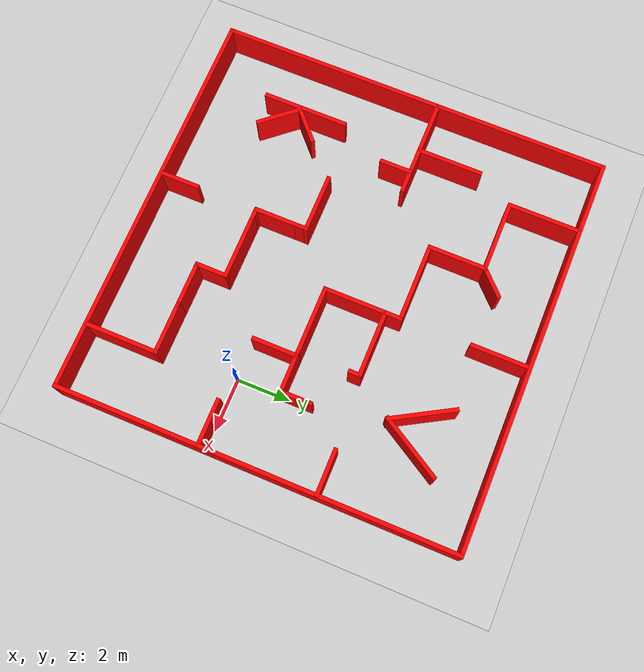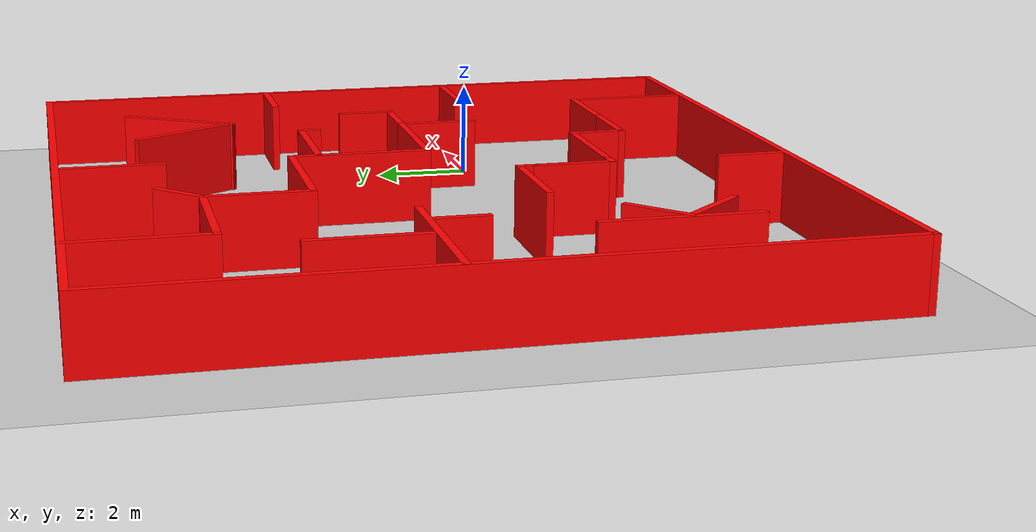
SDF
<?xml version="1.0" ?>
<sdf version="1.4">
  <world name="default">
    <include>
      <uri>model://ground_plane</uri>
    </include>
    <include>
      <uri>model://sun</uri>
    </include>
    <include>
      <uri>model://final_test_world_3</uri>
    </include>

    <!-- Only one ROS interface plugin is required per world, as any other plugin can connect a Gazebo
         topic to a ROS topic (or vise versa). -->
    <plugin name="ros_interface_plugin" filename="librotors_gazebo_ros_interface_plugin.so"/>

    <spherical_coordinates>
      <surface_model>EARTH_WGS84</surface_model>
      <latitude_deg>47.3667</latitude_deg>
      <longitude_deg>8.5500</longitude_deg>
      <elevation>500.0</elevation>
      <heading_deg>0</heading_deg>
    </spherical_coordinates>
    <physics type='ode'>
      <ode>
        <solver>
          <type>quick</type>
          <iters>1000</iters>
          <sor>1.3</sor>
        </solver>
        <constraints>
          <cfm>0</cfm>
          <erp>0.2</erp>
          <contact_max_correcting_vel>100</contact_max_correcting_vel>
          <contact_surface_layer>0.001</contact_surface_layer>
        </constraints>
      </ode>
      <max_step_size>0.01</max_step_size>
      <real_time_factor>1</real_time_factor>
      <real_time_update_rate>100</real_time_update_rate>
      <gravity>0 0 -9.8</gravity>
    </physics>
  </world>
</sdf>

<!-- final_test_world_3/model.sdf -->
<sdf version='1.6'>
  <model name='final_test_world_3'>
    <pose frame=''>-4.63034 1.94853 0 0 -0 0</pose>
    <link name='Wall_100'>
      <collision name='Wall_100_Collision'>
        <geometry>
          <box>
            <size>2.75 0.15 1.5</size>
          </box>
        </geometry>
        <pose frame=''>0 0 0.75 0 -0 0</pose>
      </collision>
      <visual name='Wall_100_Visual'>
        <pose frame=''>0 0 0.75 0 -0 0</pose>
        <geometry>
          <box>
            <size>2.75 0.15 1.5</size>
          </box>
        </geometry>
        <material>
          <script>
            <uri>file://media/materials/scripts/gazebo.material</uri>
            <name>Gazebo/Grey</name>
          </script>
          <ambient>1 0 0 1</ambient>
        </material>
      </visual>
      <pose frame=''>-4.73449 6.05707 0 0 0 -1.5708</pose>
    </link>
    <link name='Wall_101'>
      <collision name='Wall_101_Collision'>
        <geometry>
          <box>
            <size>2.75 0.15 1.5</size>
          </box>
        </geometry>
        <pose frame=''>0 0 0.75 0 -0 0</pose>
      </collision>
      <visual name='Wall_101_Visual'>
        <pose frame=''>0 0 0.75 0 -0 0</pose>
        <geometry>
          <box>
            <size>2.75 0.15 1.5</size>
          </box>
        </geometry>
        <material>
          <script>
            <uri>file://media/materials/scripts/gazebo.material</uri>
            <name>Gazebo/Grey</name>
          </script>
          <ambient>1 0 0 1</ambient>
        </material>
      </visual>
      <pose frame=''>-3.43449 4.75707 0 0 -0 0</pose>
    </link>
    <link name='Wall_102'>
      <collision name='Wall_102_Collision'>
        <geometry>
          <box>
            <size>2.25 0.15 1.5</size>
          </box>
        </geometry>
        <pose frame=''>0 0 0.75 0 -0 0</pose>
      </collision>
      <visual name='Wall_102_Visual'>
        <pose frame=''>0 0 0.75 0 -0 0</pose>
        <geometry>
          <box>
            <size>2.25 0.15 1.5</size>
          </box>
        </geometry>
        <material>
          <script>
            <uri>file://media/materials/scripts/gazebo.material</uri>
            <name>Gazebo/Grey</name>
          </script>
          <ambient>1 0 0 1</ambient>
        </material>
      </visual>
      <pose frame=''>-2.13449 3.70707 0 0 0 -1.5708</pose>
    </link>
    <link name='Wall_103'>
      <collision name='Wall_103_Collision'>
        <geometry>
          <box>
            <size>3 0.15 1.5</size>
          </box>
        </geometry>
        <pose frame=''>0 0 0.75 0 -0 0</pose>
      </collision>
      <visual name='Wall_103_Visual'>
        <pose frame=''>0 0 0.75 0 -0 0</pose>
        <geometry>
          <box>
            <size>3 0.15 1.5</size>
          </box>
        </geometry>
        <material>
          <script>
            <uri>file://media/materials/scripts/gazebo.material</uri>
            <name>Gazebo/Grey</name>
          </script>
          <ambient>1 0 0 1</ambient>
        </material>
      </visual>
      <pose frame=''>-0.709491 2.65707 0 0 -0 0</pose>
    </link>
    <link name='Wall_104'>
      <collision name='Wall_104_Collision'>
        <geometry>
          <box>
            <size>3 0.15 1.5</size>
          </box>
        </geometry>
        <pose frame=''>0 0 0.75 0 -0 0</pose>
      </collision>
      <visual name='Wall_104_Visual'>
        <pose frame=''>0 0 0.75 0 -0 0</pose>
        <geometry>
          <box>
            <size>3 0.15 1.5</size>
          </box>
        </geometry>
        <material>
          <script>
            <uri>file://media/materials/scripts/gazebo.material</uri>
            <name>Gazebo/Grey</name>
          </script>
          <ambient>1 0 0 1</ambient>
        </material>
      </visual>
      <pose frame=''>0.71551 1.23207 0 0 0 -1.5708</pose>
    </link>
    <link name='Wall_105'>
      <collision name='Wall_105_Collision'>
        <geometry>
          <box>
            <size>2.75 0.15 1.5</size>
          </box>
        </geometry>
        <pose frame=''>0 0 0.75 0 -0 0</pose>
      </collision>
      <visual name='Wall_105_Visual'>
        <pose frame=''>0 0 0.75 0 -0 0</pose>
        <geometry>
          <box>
            <size>2.75 0.15 1.5</size>
          </box>
        </geometry>
        <material>
          <script>
            <uri>file://media/materials/scripts/gazebo.material</uri>
            <name>Gazebo/Grey</name>
          </script>
          <ambient>1 0 0 1</ambient>
        </material>
      </visual>
      <pose frame=''>2.01551 -0.192928 0 0 -0 0</pose>
    </link>
    <link name='Wall_106'>
      <collision name='Wall_106_Collision'>
        <geometry>
          <box>
            <size>1.75 0.15 1.5</size>
          </box>
        </geometry>
        <pose frame=''>0 0 0.75 0 -0 0</pose>
      </collision>
      <visual name='Wall_106_Visual'>
        <pose frame=''>0 0 0.75 0 -0 0</pose>
        <geometry>
          <box>
            <size>1.75 0.15 1.5</size>
          </box>
        </geometry>
        <material>
          <script>
            <uri>file://media/materials/scripts/gazebo.material</uri>
            <name>Gazebo/Grey</name>
          </script>
          <ambient>1 0 0 1</ambient>
        </material>
      </visual>
      <pose frame=''>3.31551 -0.992928 0 0 0 -1.5708</pose>
    </link>
    <link name='Wall_108'>
      <collision name='Wall_108_Collision'>
        <geometry>
          <box>
            <size>2.75 0.15 1.5</size>
          </box>
        </geometry>
        <pose frame=''>0 0 0.75 0 -0 0</pose>
      </collision>
      <visual name='Wall_108_Visual'>
        <pose frame=''>0 0 0.75 0 -0 0</pose>
        <geometry>
          <box>
            <size>2.75 0.15 1.5</size>
          </box>
        </geometry>
        <material>
          <script>
            <uri>file://media/materials/scripts/gazebo.material</uri>
            <name>Gazebo/Grey</name>
          </script>
          <ambient>1 0 0 1</ambient>
        </material>
      </visual>
      <pose frame=''>5.05118 -6.04333 0 0 -0 1.5708</pose>
    </link>
    <link name='Wall_109'>
      <collision name='Wall_109_Collision'>
        <geometry>
          <box>
            <size>2 0.15 1.5</size>
          </box>
        </geometry>
        <pose frame=''>0 0 0.75 0 -0 0</pose>
      </collision>
      <visual name='Wall_109_Visual'>
        <pose frame=''>0 0 0.75 0 -0 0</pose>
        <geometry>
          <box>
            <size>2 0.15 1.5</size>
          </box>
        </geometry>
        <material>
          <script>
            <uri>file://media/materials/scripts/gazebo.material</uri>
            <name>Gazebo/Grey</name>
          </script>
          <ambient>1 0 0 1</ambient>
        </material>
      </visual>
      <pose frame=''>4.12618 -4.74332 0 0 -0 3.14159</pose>
    </link>
    <link name='Wall_110'>
      <collision name='Wall_110_Collision'>
        <geometry>
          <box>
            <size>1.75 0.15 1.5</size>
          </box>
        </geometry>
        <pose frame=''>0 0 0.75 0 -0 0</pose>
      </collision>
      <visual name='Wall_110_Visual'>
        <pose frame=''>0 0 0.75 0 -0 0</pose>
        <geometry>
          <box>
            <size>1.75 0.15 1.5</size>
          </box>
        </geometry>
        <material>
          <script>
            <uri>file://media/materials/scripts/gazebo.material</uri>
            <name>Gazebo/Grey</name>
          </script>
          <ambient>1 0 0 1</ambient>
        </material>
      </visual>
      <pose frame=''>2.40118 -4.74332 0 0 -0 3.14159</pose>
    </link>
    <link name='Wall_111'>
      <collision name='Wall_111_Collision'>
        <geometry>
          <box>
            <size>1.25 0.15 1.5</size>
          </box>
        </geometry>
        <pose frame=''>0 0 0.75 0 -0 0</pose>
      </collision>
      <visual name='Wall_111_Visual'>
        <pose frame=''>0 0 0.75 0 -0 0</pose>
        <geometry>
          <box>
            <size>1.25 0.15 1.5</size>
          </box>
        </geometry>
        <material>
          <script>
            <uri>file://media/materials/scripts/gazebo.material</uri>
            <name>Gazebo/Grey</name>
          </script>
          <ambient>1 0 0 1</ambient>
        </material>
      </visual>
      <pose frame=''>1.60118 -4.19332 0 0 -0 1.5708</pose>
    </link>
    <link name='Wall_112'>
      <collision name='Wall_112_Collision'>
        <geometry>
          <box>
            <size>2.5 0.15 1.5</size>
          </box>
        </geometry>
        <pose frame=''>0 0 0.75 0 -0 0</pose>
      </collision>
      <visual name='Wall_112_Visual'>
        <pose frame=''>0 0 0.75 0 -0 0</pose>
        <geometry>
          <box>
            <size>2.5 0.15 1.5</size>
          </box>
        </geometry>
        <material>
          <script>
            <uri>file://media/materials/scripts/gazebo.material</uri>
            <name>Gazebo/Grey</name>
          </script>
          <ambient>1 0 0 1</ambient>
        </material>
      </visual>
      <pose frame=''>0.426178 -3.64332 0 0 -0 3.14159</pose>
    </link>
    <link name='Wall_113'>
      <collision name='Wall_113_Collision'>
        <geometry>
          <box>
            <size>0.5 0.15 1.5</size>
          </box>
        </geometry>
        <pose frame=''>0 0 0.75 0 -0 0</pose>
      </collision>
      <visual name='Wall_113_Visual'>
        <pose frame=''>0 0 0.75 0 -0 0</pose>
        <geometry>
          <box>
            <size>0.5 0.15 1.5</size>
          </box>
        </geometry>
        <material>
          <script>
            <uri>file://media/materials/scripts/gazebo.material</uri>
            <name>Gazebo/Grey</name>
          </script>
          <ambient>1 0 0 1</ambient>
        </material>
      </visual>
      <pose frame=''>-0.923823 -3.64332 0 0 -0 3.14159</pose>
    </link>
    <link name='Wall_114'>
      <collision name='Wall_114_Collision'>
        <geometry>
          <box>
            <size>1.75 0.15 1.5</size>
          </box>
        </geometry>
        <pose frame=''>0 0 0.75 0 -0 0</pose>
      </collision>
      <visual name='Wall_114_Visual'>
        <pose frame=''>0 0 0.75 0 -0 0</pose>
        <geometry>
          <box>
            <size>1.75 0.15 1.5</size>
          </box>
        </geometry>
        <material>
          <script>
            <uri>file://media/materials/scripts/gazebo.material</uri>
            <name>Gazebo/Grey</name>
          </script>
          <ambient>1 0 0 1</ambient>
        </material>
      </visual>
      <pose frame=''>-1.09882 -2.84333 0 0 -0 1.5708</pose>
    </link>
    <link name='Wall_115'>
      <collision name='Wall_115_Collision'>
        <geometry>
          <box>
            <size>0.5 0.15 1.5</size>
          </box>
        </geometry>
        <pose frame=''>0 0 0.75 0 -0 0</pose>
      </collision>
      <visual name='Wall_115_Visual'>
        <pose frame=''>0 0 0.75 0 -0 0</pose>
        <geometry>
          <box>
            <size>0.5 0.15 1.5</size>
          </box>
        </geometry>
        <material>
          <script>
            <uri>file://media/materials/scripts/gazebo.material</uri>
            <name>Gazebo/Grey</name>
          </script>
          <ambient>1 0 0 1</ambient>
        </material>
      </visual>
      <pose frame=''>-1.09882 -1.86833 0 0 -0 1.5708</pose>
    </link>
    <link name='Wall_116'>
      <collision name='Wall_116_Collision'>
        <geometry>
          <box>
            <size>2.25 0.15 1.5</size>
          </box>
        </geometry>
        <pose frame=''>0 0 0.75 0 -0 0</pose>
      </collision>
      <visual name='Wall_116_Visual'>
        <pose frame=''>0 0 0.75 0 -0 0</pose>
        <geometry>
          <box>
            <size>2.25 0.15 1.5</size>
          </box>
        </geometry>
        <material>
          <script>
            <uri>file://media/materials/scripts/gazebo.material</uri>
            <name>Gazebo/Grey</name>
          </script>
          <ambient>1 0 0 1</ambient>
        </material>
      </visual>
      <pose frame=''>-2.14882 -1.69332 0 0 -0 3.14159</pose>
    </link>
    <link name='Wall_118'>
      <collision name='Wall_118_Collision'>
        <geometry>
          <box>
            <size>1.5 0.15 1.5</size>
          </box>
        </geometry>
        <pose frame=''>0 0 0.75 0 -0 0</pose>
      </collision>
      <visual name='Wall_118_Visual'>
        <pose frame=''>0 0 0.75 0 -0 0</pose>
        <geometry>
          <box>
            <size>1.5 0.15 1.5</size>
          </box>
        </geometry>
        <material>
          <script>
            <uri>file://media/materials/scripts/gazebo.material</uri>
            <name>Gazebo/Grey</name>
          </script>
          <ambient>1 0 0 1</ambient>
        </material>
      </visual>
      <pose frame=''>-1.09746 -6.66833 0 0 -0 1.5708</pose>
    </link>
    <link name='Wall_121'>
      <collision name='Wall_121_Collision'>
        <geometry>
          <box>
            <size>1.75 0.15 1.5</size>
          </box>
        </geometry>
        <pose frame=''>0 0 0.75 0 -0 0</pose>
      </collision>
      <visual name='Wall_121_Visual'>
        <pose frame=''>0 0 0.75 0 -0 0</pose>
        <geometry>
          <box>
            <size>1.75 0.15 1.5</size>
          </box>
        </geometry>
        <material>
          <script>
            <uri>file://media/materials/scripts/gazebo.material</uri>
            <name>Gazebo/Grey</name>
          </script>
          <ambient>1 0 0 1</ambient>
        </material>
      </visual>
      <pose frame=''>6.60224 2.2926 0 0 -0 3.14159</pose>
    </link>
    <link name='Wall_123'>
      <collision name='Wall_123_Collision'>
        <geometry>
          <box>
            <size>2.25 0.15 1.5</size>
          </box>
        </geometry>
        <pose frame=''>0 0 0.75 0 -0 0</pose>
      </collision>
      <visual name='Wall_123_Visual'>
        <pose frame=''>0 0 0.75 0 -0 0</pose>
        <geometry>
          <box>
            <size>2.25 0.15 1.5</size>
          </box>
        </geometry>
        <material>
          <script>
            <uri>file://media/materials/scripts/gazebo.material</uri>
            <name>Gazebo/Grey</name>
          </script>
          <ambient>1 0 0 1</ambient>
        </material>
      </visual>
      <pose frame=''>0.659217 6.34853 0 0 0 -1.5708</pose>
    </link>
    <link name='Wall_125'>
      <collision name='Wall_125_Collision'>
        <geometry>
          <box>
            <size>3.75 0.15 1.5</size>
          </box>
        </geometry>
        <pose frame=''>0 0 0.75 0 -0 0</pose>
      </collision>
      <visual name='Wall_125_Visual'>
        <pose frame=''>0 0 0.75 0 -0 0</pose>
        <geometry>
          <box>
            <size>3.75 0.15 1.5</size>
          </box>
        </geometry>
        <material>
          <script>
            <uri>file://media/materials/scripts/gazebo.material</uri>
            <name>Gazebo/Grey</name>
          </script>
          <ambient>1 0 0 1</ambient>
        </material>
      </visual>
      <pose frame=''>-5.61056 0.967757 0 0 -0 0</pose>
    </link>
    <link name='Wall_127'>
      <collision name='Wall_127_Collision'>
        <geometry>
          <box>
            <size>1.75 0.15 1.5</size>
          </box>
        </geometry>
        <pose frame=''>0 0 0.75 0 -0 0</pose>
      </collision>
      <visual name='Wall_127_Visual'>
        <pose frame=''>0 0 0.75 0 -0 0</pose>
        <geometry>
          <box>
            <size>1.75 0.15 1.5</size>
          </box>
        </geometry>
        <material>
          <script>
            <uri>file://media/materials/scripts/gazebo.material</uri>
            <name>Gazebo/Grey</name>
          </script>
          <ambient>1 0 0 1</ambient>
        </material>
      </visual>
      <pose frame=''>6.56866 -2.05139 0 0 -0 3.14159</pose>
    </link>
    <link name='Wall_129'>
      <collision name='Wall_129_Collision'>
        <geometry>
          <box>
            <size>2.5 0.15 1.5</size>
          </box>
        </geometry>
        <pose frame=''>0 0 0.75 0 -0 0</pose>
      </collision>
      <visual name='Wall_129_Visual'>
        <pose frame=''>0 0 0.75 0 -0 0</pose>
        <geometry>
          <box>
            <size>2.5 0.15 1.5</size>
          </box>
        </geometry>
        <material>
          <script>
            <uri>file://media/materials/scripts/gazebo.material</uri>
            <name>Gazebo/Grey</name>
          </script>
          <ambient>1 0 0 1</ambient>
        </material>
      </visual>
      <pose frame=''>-5.49749 2.16166 0 0 -0 1.5708</pose>
    </link>
    <link name='Wall_131'>
      <collision name='Wall_131_Collision'>
        <geometry>
          <box>
            <size>1.25 0.15 1.5</size>
          </box>
        </geometry>
        <pose frame=''>0 0 0.75 0 -0 0</pose>
      </collision>
      <visual name='Wall_131_Visual'>
        <pose frame=''>0 0 0.75 0 -0 0</pose>
        <geometry>
          <box>
            <size>1.25 0.15 1.5</size>
          </box>
        </geometry>
        <material>
          <script>
            <uri>file://media/materials/scripts/gazebo.material</uri>
            <name>Gazebo/Grey</name>
          </script>
          <ambient>1 0 0 1</ambient>
        </material>
      </visual>
      <pose frame=''>-4.57979 0.406067 0 0 0 -1.5708</pose>
    </link>
    <link name='Wall_133'>
      <collision name='Wall_133_Collision'>
        <geometry>
          <box>
            <size>1.5 0.15 1.5</size>
          </box>
        </geometry>
        <pose frame=''>0 0 0.75 0 -0 0</pose>
      </collision>
      <visual name='Wall_133_Visual'>
        <pose frame=''>0 0 0.75 0 -0 0</pose>
        <geometry>
          <box>
            <size>1.5 0.15 1.5</size>
          </box>
        </geometry>
        <material>
          <script>
            <uri>file://media/materials/scripts/gazebo.material</uri>
            <name>Gazebo/Grey</name>
          </script>
          <ambient>1 0 0 1</ambient>
        </material>
      </visual>
      <pose frame=''>3.99051 -0.192928 0 0 -0 0</pose>
    </link>
    <link name='Wall_134'>
      <collision name='Wall_134_Collision'>
        <geometry>
          <box>
            <size>1.25 0.15 1.5</size>
          </box>
        </geometry>
        <pose frame=''>0 0 0.75 0 -0 0</pose>
      </collision>
      <visual name='Wall_134_Visual'>
        <pose frame=''>0 0 0.75 0 -0 0</pose>
        <geometry>
          <box>
            <size>1.25 0.15 1.5</size>
          </box>
        </geometry>
        <material>
          <script>
            <uri>file://media/materials/scripts/gazebo.material</uri>
            <name>Gazebo/Grey</name>
          </script>
          <ambient>1 0 0 1</ambient>
        </material>
      </visual>
      <pose frame=''>4.66551 0.357072 0 0 -0 1.5708</pose>
    </link>
    <link name='Wall_139'>
      <collision name='Wall_139_Collision'>
        <geometry>
          <box>
            <size>2.5 0.15 1.5</size>
          </box>
        </geometry>
        <pose frame=''>0 0 0.75 0 -0 0</pose>
      </collision>
      <visual name='Wall_139_Visual'>
        <pose frame=''>0 0 0.75 0 -0 0</pose>
        <geometry>
          <box>
            <size>2.5 0.15 1.5</size>
          </box>
        </geometry>
        <material>
          <script>
            <uri>file://media/materials/scripts/gazebo.material</uri>
            <name>Gazebo/Grey</name>
          </script>
          <ambient>1 0 0 1</ambient>
        </material>
      </visual>
      <pose frame=''>1.9485 2.08791 0 0 -0 0</pose>
    </link>
    <link name='Wall_140'>
      <collision name='Wall_140_Collision'>
        <geometry>
          <box>
            <size>0.5 0.15 1.5</size>
          </box>
        </geometry>
        <pose frame=''>0 0 0.75 0 -0 0</pose>
      </collision>
      <visual name='Wall_140_Visual'>
        <pose frame=''>0 0 0.75 0 -0 0</pose>
        <geometry>
          <box>
            <size>0.5 0.15 1.5</size>
          </box>
        </geometry>
        <material>
          <script>
            <uri>file://media/materials/scripts/gazebo.material</uri>
            <name>Gazebo/Grey</name>
          </script>
          <ambient>1 0 0 1</ambient>
        </material>
      </visual>
      <pose frame=''>3.1235 1.91291 0 0 0 -1.5708</pose>
    </link>
    <link name='Wall_142'>
      <collision name='Wall_142_Collision'>
        <geometry>
          <box>
            <size>1.25 0.15 1.5</size>
          </box>
        </geometry>
        <pose frame=''>0 0 0.75 0 -0 0</pose>
      </collision>
      <visual name='Wall_142_Visual'>
        <pose frame=''>0 0 0.75 0 -0 0</pose>
        <geometry>
          <box>
            <size>1.25 0.15 1.5</size>
          </box>
        </geometry>
        <material>
          <script>
            <uri>file://media/materials/scripts/gazebo.material</uri>
            <name>Gazebo/Grey</name>
          </script>
          <ambient>1 0 0 1</ambient>
        </material>
      </visual>
      <pose frame=''>-1.74558 5.14598 0 0 -0 0.785398</pose>
    </link>
    <link name='Wall_85'>
      <collision name='Wall_85_Collision'>
        <geometry>
          <box>
            <size>15 0.15 1.5</size>
          </box>
        </geometry>
        <pose frame=''>0 0 0.75 0 -0 0</pose>
      </collision>
      <visual name='Wall_85_Visual'>
        <pose frame=''>0 0 0.75 0 -0 0</pose>
        <geometry>
          <box>
            <size>15 0.15 1.5</size>
          </box>
        </geometry>
        <material>
          <script>
            <uri>file://media/materials/scripts/gazebo.material</uri>
            <name>Gazebo/Grey</name>
          </script>
          <ambient>1 0 0 1</ambient>
        </material>
      </visual>
      <pose frame=''>0 7.425 0 0 -0 0</pose>
    </link>
    <link name='Wall_86'>
      <collision name='Wall_86_Collision'>
        <geometry>
          <box>
            <size>15 0.15 1.5</size>
          </box>
        </geometry>
        <pose frame=''>0 0 0.75 0 -0 0</pose>
      </collision>
      <visual name='Wall_86_Visual'>
        <pose frame=''>0 0 0.75 0 -0 0</pose>
        <geometry>
          <box>
            <size>15 0.15 1.5</size>
          </box>
        </geometry>
        <material>
          <script>
            <uri>file://media/materials/scripts/gazebo.material</uri>
            <name>Gazebo/Grey</name>
          </script>
          <ambient>1 0 0 1</ambient>
        </material>
      </visual>
      <pose frame=''>7.425 0 0 0 0 -1.5708</pose>
    </link>
    <link name='Wall_87'>
      <collision name='Wall_87_Collision'>
        <geometry>
          <box>
            <size>15 0.15 1.5</size>
          </box>
        </geometry>
        <pose frame=''>0 0 0.75 0 -0 0</pose>
      </collision>
      <visual name='Wall_87_Visual'>
        <pose frame=''>0 0 0.75 0 -0 0</pose>
        <geometry>
          <box>
            <size>15 0.15 1.5</size>
          </box>
        </geometry>
        <material>
          <script>
            <uri>file://media/materials/scripts/gazebo.material</uri>
            <name>Gazebo/Grey</name>
          </script>
          <ambient>1 0 0 1</ambient>
        </material>
      </visual>
      <pose frame=''>0 -7.425 0 0 -0 3.14159</pose>
    </link>
    <link name='Wall_88'>
      <collision name='Wall_88_Collision'>
        <geometry>
          <box>
            <size>15 0.15 1.5</size>
          </box>
        </geometry>
        <pose frame=''>0 0 0.75 0 -0 0</pose>
      </collision>
      <visual name='Wall_88_Visual'>
        <pose frame=''>0 0 0.75 0 -0 0</pose>
        <geometry>
          <box>
            <size>15 0.15 1.5</size>
          </box>
        </geometry>
        <material>
          <script>
            <uri>file://media/materials/scripts/gazebo.material</uri>
            <name>Gazebo/Grey</name>
          </script>
          <ambient>1 0 0 1</ambient>
        </material>
      </visual>
      <pose frame=''>-7.425 0 0 0 -0 1.5708</pose>
    </link>
    <link name='Wall_90'>
      <collision name='Wall_90_Collision'>
        <geometry>
          <box>
            <size>3.25 0.15 1.5</size>
          </box>
        </geometry>
        <pose frame=''>0 0 0.75 0 -0 0</pose>
      </collision>
      <visual name='Wall_90_Visual'>
        <pose frame=''>0 0 0.75 0 -0 0</pose>
        <geometry>
          <box>
            <size>3.25 0.15 1.5</size>
          </box>
        </geometry>
        <material>
          <script>
            <uri>file://media/materials/scripts/gazebo.material</uri>
            <name>Gazebo/Grey</name>
          </script>
          <ambient>1 0 0 1</ambient>
        </material>
      </visual>
      <pose frame=''>-5.43731 -3.54103 0 0 0 -1.5708</pose>
    </link>
    <link name='Wall_92'>
      <collision name='Wall_92_Collision'>
        <geometry>
          <box>
            <size>1.5012 0.15 1.5</size>
          </box>
        </geometry>
        <pose frame=''>0 0 0.75 0 -0 0</pose>
      </collision>
      <visual name='Wall_92_Visual'>
        <pose frame=''>0 0 0.75 0 -0 0</pose>
        <geometry>
          <box>
            <size>1.5012 0.15 1.5</size>
          </box>
        </geometry>
        <material>
          <script>
            <uri>file://media/materials/scripts/gazebo.material</uri>
            <name>Gazebo/Grey</name>
          </script>
          <ambient>1 0 0 1</ambient>
        </material>
      </visual>
      <pose frame=''>-4.8779 -3.28653 0 0 -0 0.743283</pose>
    </link>
    <link name='Wall_94'>
      <collision name='Wall_94_Collision'>
        <geometry>
          <box>
            <size>1.76929 0.15 1.5</size>
          </box>
        </geometry>
        <pose frame=''>0 0 0.75 0 -0 0</pose>
      </collision>
      <visual name='Wall_94_Visual'>
        <pose frame=''>0 0 0.75 0 -0 0</pose>
        <geometry>
          <box>
            <size>1.76929 0.15 1.5</size>
          </box>
        </geometry>
        <material>
          <script>
            <uri>file://media/materials/scripts/gazebo.material</uri>
            <name>Gazebo/Grey</name>
          </script>
          <ambient>1 0 0 1</ambient>
        </material>
      </visual>
      <pose frame=''>-4.82974 -4.33957 0 0 0 -0.864529</pose>
    </link>
    <link name='Wall_97'>
      <collision name='Wall_97_Collision'>
        <geometry>
          <box>
            <size>2.52639 0.15 1.5</size>
          </box>
        </geometry>
        <pose frame=''>0 0 0.75 0 -0 0</pose>
      </collision>
      <visual name='Wall_97_Visual'>
        <pose frame=''>0 0 0.75 0 -0 0</pose>
        <geometry>
          <box>
            <size>2.52639 0.15 1.5</size>
          </box>
        </geometry>
        <material>
          <script>
            <uri>file://media/materials/scripts/gazebo.material</uri>
            <name>Gazebo/Grey</name>
          </script>
          <ambient>1 0 0 1</ambient>
        </material>
      </visual>
      <pose frame=''>3.55604 4.57212 0 0 0 -1.0536</pose>
    </link>
    <link name='Wall_98'>
      <collision name='Wall_98_Collision'>
        <geometry>
          <box>
            <size>2.65106 0.15 1.5</size>
          </box>
        </geometry>
        <pose frame=''>0 0 0.75 0 -0 0</pose>
      </collision>
      <visual name='Wall_98_Visual'>
        <pose frame=''>0 0 0.75 0 -0 0</pose>
        <geometry>
          <box>
            <size>2.65106 0.15 1.5</size>
          </box>
        </geometry>
        <material>
          <script>
            <uri>file://media/materials/scripts/gazebo.material</uri>
            <name>Gazebo/Grey</name>
          </script>
          <ambient>1 0 0 1</ambient>
        </material>
      </visual>
      <pose frame=''>4.76146 4.60254 0 0 -0 1.03992</pose>
    </link>
    <static>1</static>
  </model>
</sdf>
